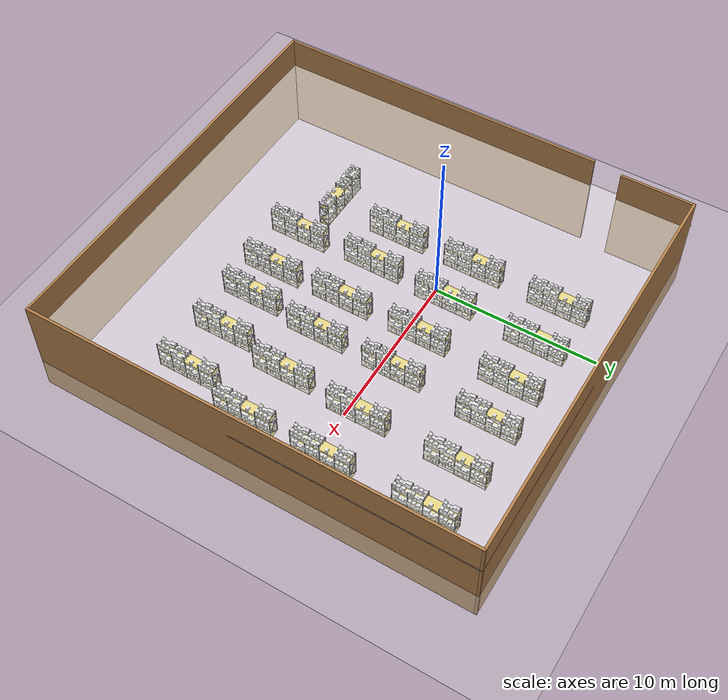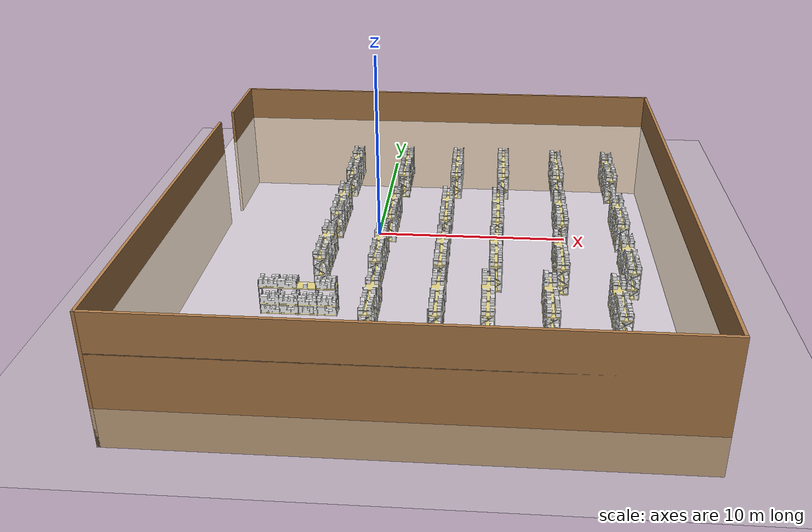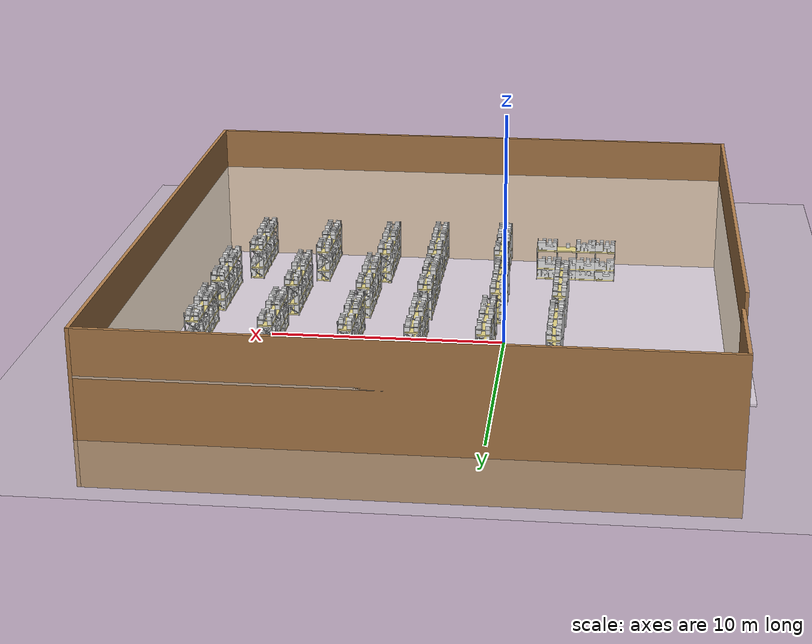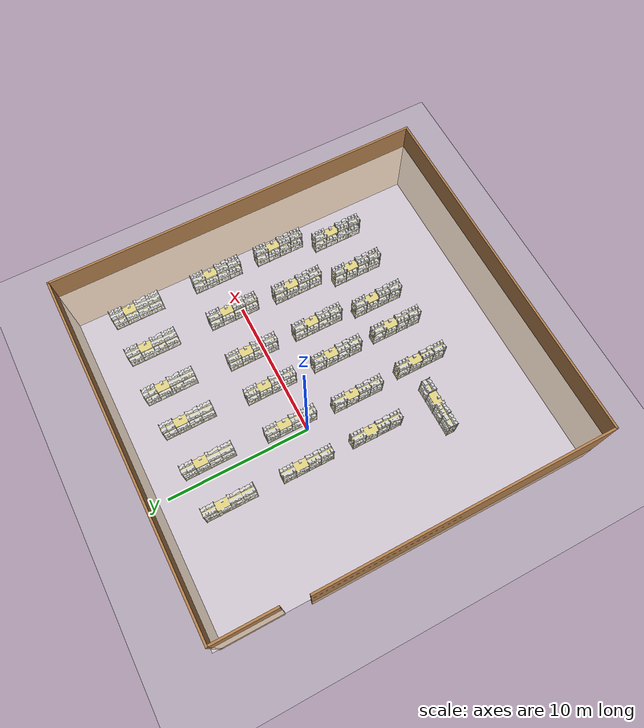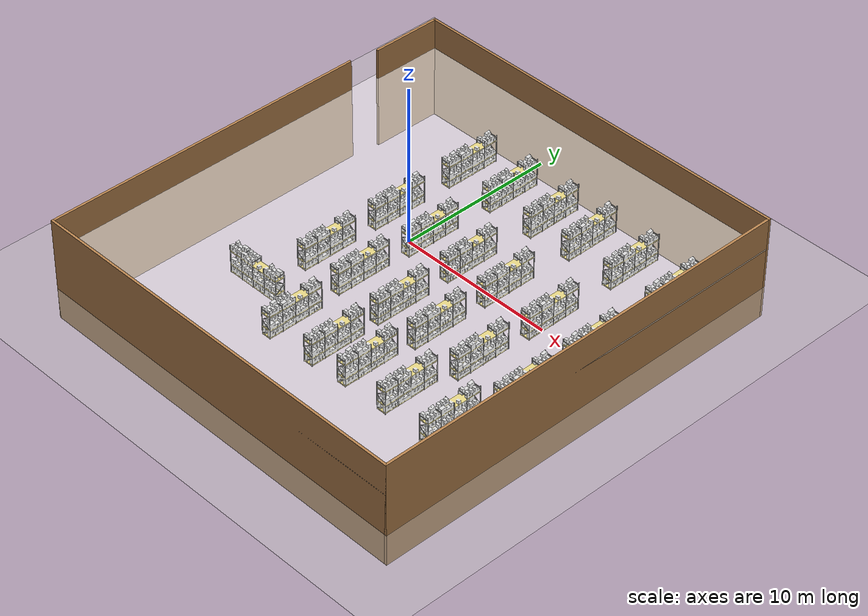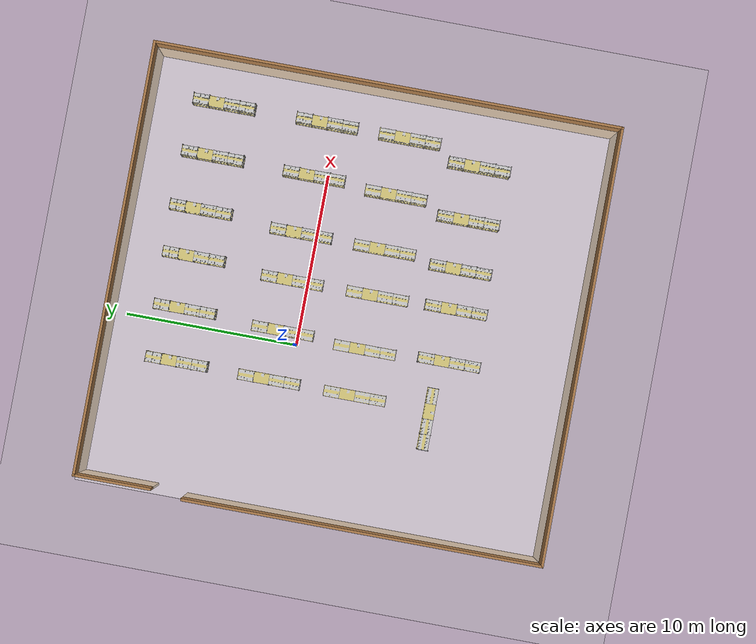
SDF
<?xml version='1.0' encoding='utf-8'?>
<sdf version="1.7">
  <world name="default">
    <light name="sun" type="directional">
      <cast_shadows>1</cast_shadows>
      <pose>0 0 10 0 -0 0</pose>
      <diffuse>0.8 0.8 0.8 1</diffuse>
      <specular>0.2 0.2 0.2 1</specular>
      <attenuation>
        <range>1000</range>
        <constant>0.9</constant>
        <linear>0.01</linear>
        <quadratic>0.001</quadratic>
      </attenuation>
      <direction>-0.5 0.1 -0.9</direction>
      <spot>
        <inner_angle>0</inner_angle>
        <outer_angle>0</outer_angle>
        <falloff>0</falloff>
      </spot>
    </light>
    <model name="ground_plane">
      <static>1</static>
      <link name="link">
        <collision name="collision">
          <geometry>
            <plane>
              <normal>0 0 1</normal>
              <size>100 100</size>
            </plane>
          </geometry>
          <surface>
            <contact>
              <collide_bitmask>65535</collide_bitmask>
              <ode />
            </contact>
            <friction>
              <ode>
                <mu>100</mu>
                <mu2>50</mu2>
              </ode>
              <torsional>
                <ode />
              </torsional>
            </friction>
            <bounce />
          </surface>
          <max_contacts>10</max_contacts>
        </collision>
        <visual name="visual">
          <cast_shadows>0</cast_shadows>
          <geometry>
            <plane>
              <normal>0 0 1</normal>
              <size>100 100</size>
            </plane>
          </geometry>
          <material>
            <script>
              <uri>file://media/materials/scripts/gazebo.material</uri>
              <name>Gazebo/Grey</name>
            </script>
          </material>
        </visual>
        <self_collide>0</self_collide>
        <enable_wind>0</enable_wind>
        <kinematic>0</kinematic>
      </link>
    </model>
    <gravity>0 0 -9.8</gravity>
    <magnetic_field>6e-06 2.3e-05 -4.2e-05</magnetic_field>
    <atmosphere type="adiabatic" />
    <physics type="ode">
      <max_step_size>0.001</max_step_size>
      <real_time_factor>1</real_time_factor>
      <real_time_update_rate>1000</real_time_update_rate>
    </physics>
    <scene>
      <ambient>0.4 0.4 0.4 1</ambient>
      <background>0.7 0.7 0.7 1</background>
      <shadows>1</shadows>
    </scene>
    <wind />
    <spherical_coordinates>
      <surface_model>EARTH_WGS84</surface_model>
      <latitude_deg>0</latitude_deg>
      <longitude_deg>0</longitude_deg>
      <elevation>0</elevation>
      <heading_deg>0</heading_deg>
    </spherical_coordinates>
    <gui fullscreen="0">
      <camera name="user_camera">
        <pose>-28 -31 34 0 0.68 0.75</pose>
        <view_controller>orbit</view_controller>
        <projection_type>perspective</projection_type>
      </camera>
    </gui>
    <model name="Untitled">
      <pose>15.4538 -2.50054 0 0 -0 0</pose>
      <link name="Floor_0">
        <collision name="Floor_0_Collision">
          <geometry>
            <box>
              <size>25.25 27 0.1</size>
            </box>
          </geometry>
          <pose>0 0 0.05 0 -0 0</pose>
          <max_contacts>10</max_contacts>
          <surface>
            <contact>
              <ode />
            </contact>
            <bounce />
            <friction>
              <torsional>
                <ode />
              </torsional>
              <ode />
            </friction>
          </surface>
        </collision>
        <visual name="Floor_0_Visual">
          <pose>0 0 0.05 0 -0 0</pose>
          <geometry>
            <box>
              <size>25.25 27 0.1</size>
            </box>
          </geometry>
          <material>
            <ambient>1 1 1 0.5</ambient>
            <diffuse>1 1 1 0.5</diffuse>
          </material>
          <meta>
            <layer>1</layer>
          </meta>
        </visual>
        <pose>-12.624999 0 2.5 0 -0 0</pose>
        <self_collide>0</self_collide>
        <enable_wind>0</enable_wind>
        <kinematic>0</kinematic>
      </link>
      <link name="Wall_0">
        <collision name="Wall_0_Collision">
          <geometry>
            <box>
              <size>20.75 0.15 6.5</size>
            </box>
          </geometry>
          <pose>0 0 1.25 0 -0 0</pose>
          <max_contacts>10</max_contacts>
          <surface>
            <contact>
              <ode />
            </contact>
            <bounce />
            <friction>
              <torsional>
                <ode />
              </torsional>
              <ode />
            </friction>
          </surface>
        </collision>
        <visual name="Wall_0_Visual">
          <pose>0 0 1.25 0 -0 0</pose>
          <geometry>
            <box>
              <size>20.75 0.15 6.5</size>
            </box>
          </geometry>
          <material>
            <script>
              <uri>file://media/materials/scripts/gazebo.material</uri>
              <name>Gazebo/Wood</name>
            </script>
            <ambient>1 1 1 1</ambient>
          </material>
          <meta>
            <layer>0</layer>
          </meta>
        </visual>
        <pose>-25.175 -3.125 0 0 -0 -1.5708</pose>
        <self_collide>0</self_collide>
        <enable_wind>0</enable_wind>
        <kinematic>0</kinematic>
      </link>
      <link name="Wall_1">
        <collision name="Wall_1_Collision">
          <geometry>
            <box>
              <size>25.25 0.15 6.5</size>
            </box>
          </geometry>
          <pose>0 0 1.25 0 -0 0</pose>
          <max_contacts>10</max_contacts>
          <surface>
            <contact>
              <ode />
            </contact>
            <bounce />
            <friction>
              <torsional>
                <ode />
              </torsional>
              <ode />
            </friction>
          </surface>
        </collision>
        <visual name="Wall_1_Visual">
          <pose>0 0 1.25 0 -0 0</pose>
          <geometry>
            <box>
              <size>25.25 0.15 6.5</size>
            </box>
          </geometry>
          <material>
            <script>
              <uri>file://media/materials/scripts/gazebo.material</uri>
              <name>Gazebo/Wood</name>
            </script>
            <ambient>1 1 1 1</ambient>
          </material>
          <meta>
            <layer>0</layer>
          </meta>
        </visual>
        <pose>-12.625 -13.425 0 0 -0 0</pose>
        <self_collide>0</self_collide>
        <enable_wind>0</enable_wind>
        <kinematic>0</kinematic>
      </link>
      <link name="Wall_2">
        <collision name="Wall_2_Collision">
          <geometry>
            <box>
              <size>27 0.15 6.5</size>
            </box>
          </geometry>
          <pose>0 0 1.25 0 -0 0</pose>
          <max_contacts>10</max_contacts>
          <surface>
            <contact>
              <ode />
            </contact>
            <bounce />
            <friction>
              <torsional>
                <ode />
              </torsional>
              <ode />
            </friction>
          </surface>
        </collision>
        <visual name="Wall_2_Visual">
          <pose>0 0 1.25 0 -0 0</pose>
          <geometry>
            <box>
              <size>27 0.15 6.5</size>
            </box>
          </geometry>
          <material>
            <script>
              <uri>file://media/materials/scripts/gazebo.material</uri>
              <name>Gazebo/Wood</name>
            </script>
            <ambient>1 1 1 1</ambient>
          </material>
          <meta>
            <layer>0</layer>
          </meta>
        </visual>
        <pose>-0.075 0 0 0 -0 1.5708</pose>
        <self_collide>0</self_collide>
        <enable_wind>0</enable_wind>
        <kinematic>0</kinematic>
      </link>
      <link name="Wall_3">
        <collision name="Wall_3_Collision">
          <geometry>
            <box>
              <size>25 0.15 6.5</size>
            </box>
          </geometry>
          <pose>0 0 1.25 0 -0 0</pose>
          <max_contacts>10</max_contacts>
          <surface>
            <contact>
              <ode />
            </contact>
            <bounce />
            <friction>
              <torsional>
                <ode />
              </torsional>
              <ode />
            </friction>
          </surface>
        </collision>
        <visual name="Wall_3_Visual">
          <pose>0 0 1.25 0 -0 0</pose>
          <geometry>
            <box>
              <size>25 0.15 6.5</size>
            </box>
          </geometry>
          <material>
            <script>
              <uri>file://media/materials/scripts/gazebo.material</uri>
              <name>Gazebo/Wood</name>
            </script>
            <ambient>1 1 1 1</ambient>
          </material>
          <meta>
            <layer>0</layer>
          </meta>
        </visual>
        <pose>-12.5 13.425 0 0 -0 3.14159</pose>
        <self_collide>0</self_collide>
        <enable_wind>0</enable_wind>
        <kinematic>0</kinematic>
      </link>
      <link name="Wall_4">
        <collision name="Wall_4_Collision">
          <geometry>
            <box>
              <size>4.5 0.15 6.5</size>
            </box>
          </geometry>
          <pose>0 0 1.25 0 -0 0</pose>
          <max_contacts>10</max_contacts>
          <surface>
            <contact>
              <ode />
            </contact>
            <bounce />
            <friction>
              <torsional>
                <ode />
              </torsional>
              <ode />
            </friction>
          </surface>
        </collision>
        <visual name="Wall_4_Visual">
          <pose>0 0 1.25 0 -0 0</pose>
          <geometry>
            <box>
              <size>4.5 0.15 6.5</size>
            </box>
          </geometry>
          <material>
            <script>
              <uri>file://media/materials/scripts/gazebo.material</uri>
              <name>Gazebo/Wood</name>
            </script>
            <ambient>1 1 1 1</ambient>
          </material>
          <meta>
            <layer>0</layer>
          </meta>
        </visual>
        <pose>-24.925 11.25 0 0 -0 -1.5708</pose>
        <self_collide>0</self_collide>
        <enable_wind>0</enable_wind>
        <kinematic>0</kinematic>
      </link>
      <static>1</static>
    </model>
    <model name="shelf_aruco">
      <pose>-2.29273 -8.21492 0 0 -0 0</pose>
      <self_collide>0</self_collide>
      <link name="shelf_base">
        <pose>-0.5 0 0 0 -0 0</pose>
        <collision name="shelf_chassi_collision">
          <pose>0 0 0.9 0 -0 0</pose>
          <geometry>
            <box>
              <size>3.6 0.6 1.8</size>
            </box>
          </geometry>
          <max_contacts>10</max_contacts>
          <surface>
            <contact>
              <ode />
            </contact>
            <bounce />
            <friction>
              <torsional>
                <ode />
              </torsional>
              <ode />
            </friction>
          </surface>
        </collision>
        <visual name="shelf_chassi_visual">
          <pose>0 0 0 0 -0 0</pose>
          <geometry>
            <mesh>
              <scale>0.2 0.3 0.3</scale>
              <uri>../astra_gazebo_models/Shelf_with_ARUco_boxes/meshes/shelf_big_movai.dae</uri>
            </mesh>
          </geometry>
        </visual>
        <self_collide>0</self_collide>
        <enable_wind>0</enable_wind>
        <kinematic>0</kinematic>
      </link>
      <static>1</static>
    </model>
    <model name="shelf_aruco_clone">
      <pose>-2.25997 -3.32839 0 0 -0 1.57253</pose>
      <self_collide>0</self_collide>
      <link name="shelf_base">
        <pose>-0.5 0 0 0 -0 0</pose>
        <collision name="shelf_chassi_collision">
          <pose>0 0 0.9 0 -0 0</pose>
          <geometry>
            <box>
              <size>3.6 0.6 1.8</size>
            </box>
          </geometry>
          <max_contacts>10</max_contacts>
          <surface>
            <contact>
              <ode />
            </contact>
            <bounce />
            <friction>
              <torsional>
                <ode />
              </torsional>
              <ode />
            </friction>
          </surface>
        </collision>
        <visual name="shelf_chassi_visual">
          <pose>0 0 0 0 -0 0</pose>
          <geometry>
            <mesh>
              <scale>0.2 0.3 0.3</scale>
              <uri>../astra_gazebo_models/Shelf_with_ARUco_boxes/meshes/shelf_big_movai.dae</uri>
            </mesh>
          </geometry>
        </visual>
        <self_collide>0</self_collide>
        <enable_wind>0</enable_wind>
        <kinematic>0</kinematic>
      </link>
      <static>1</static>
    </model>
    <model name="shelf_aruco_clone_clone">
      <pose>-2.22463 1.67727 0 0 -0 1.57253</pose>
      <self_collide>0</self_collide>
      <link name="shelf_base">
        <pose>-0.5 0 0 0 -0 0</pose>
        <collision name="shelf_chassi_collision">
          <pose>0 0 0.9 0 -0 0</pose>
          <geometry>
            <box>
              <size>3.6 0.6 1.8</size>
            </box>
          </geometry>
          <max_contacts>10</max_contacts>
          <surface>
            <contact>
              <ode />
            </contact>
            <bounce />
            <friction>
              <torsional>
                <ode />
              </torsional>
              <ode />
            </friction>
          </surface>
        </collision>
        <visual name="shelf_chassi_visual">
          <pose>0 0 0 0 -0 0</pose>
          <geometry>
            <mesh>
              <scale>0.2 0.3 0.3</scale>
              <uri>../astra_gazebo_models/Shelf_with_ARUco_boxes/meshes/shelf_big_movai.dae</uri>
            </mesh>
          </geometry>
        </visual>
        <self_collide>0</self_collide>
        <enable_wind>0</enable_wind>
        <kinematic>0</kinematic>
      </link>
      <static>1</static>
    </model>
    <model name="shelf_aruco_clone_clone_0">
      <pose>-2.17709 7.0905 0 0 -0 1.57253</pose>
      <self_collide>0</self_collide>
      <link name="shelf_base">
        <pose>-0.5 0 0 0 -0 0</pose>
        <collision name="shelf_chassi_collision">
          <pose>0 0 0.9 0 -0 0</pose>
          <geometry>
            <box>
              <size>3.6 0.6 1.8</size>
            </box>
          </geometry>
          <max_contacts>10</max_contacts>
          <surface>
            <contact>
              <ode />
            </contact>
            <bounce />
            <friction>
              <torsional>
                <ode />
              </torsional>
              <ode />
            </friction>
          </surface>
        </collision>
        <visual name="shelf_chassi_visual">
          <pose>0 0 0 0 -0 0</pose>
          <geometry>
            <mesh>
              <scale>0.2 0.3 0.3</scale>
              <uri>../astra_gazebo_models/Shelf_with_ARUco_boxes/meshes/shelf_big_movai.dae</uri>
            </mesh>
          </geometry>
        </visual>
        <self_collide>0</self_collide>
        <enable_wind>0</enable_wind>
        <kinematic>0</kinematic>
      </link>
      <static>1</static>
    </model>
    <model name="shelf_aruco_clone_1">
      <pose>0.89089 7.1816 0 0 -0 1.57253</pose>
      <self_collide>0</self_collide>
      <link name="shelf_base">
        <pose>-0.5 0 0 0 -0 0</pose>
        <collision name="shelf_chassi_collision">
          <pose>0 0 0.9 0 -0 0</pose>
          <geometry>
            <box>
              <size>3.6 0.6 1.8</size>
            </box>
          </geometry>
          <max_contacts>10</max_contacts>
          <surface>
            <contact>
              <ode />
            </contact>
            <bounce />
            <friction>
              <torsional>
                <ode />
              </torsional>
              <ode />
            </friction>
          </surface>
        </collision>
        <visual name="shelf_chassi_visual">
          <pose>0 0 0 0 -0 0</pose>
          <geometry>
            <mesh>
              <scale>0.2 0.3 0.3</scale>
              <uri>../astra_gazebo_models/Shelf_with_ARUco_boxes/meshes/shelf_big_movai.dae</uri>
            </mesh>
          </geometry>
        </visual>
        <self_collide>0</self_collide>
        <enable_wind>0</enable_wind>
        <kinematic>0</kinematic>
      </link>
      <static>1</static>
    </model>
    <model name="shelf_aruco_clone_1_clone">
      <pose>3.95435 7.2214 0 0 -0 1.57253</pose>
      <self_collide>0</self_collide>
      <link name="shelf_base">
        <pose>-0.5 0 0 0 -0 0</pose>
        <collision name="shelf_chassi_collision">
          <pose>0 0 0.9 0 -0 0</pose>
          <geometry>
            <box>
              <size>3.6 0.6 1.8</size>
            </box>
          </geometry>
          <max_contacts>10</max_contacts>
          <surface>
            <contact>
              <ode />
            </contact>
            <bounce />
            <friction>
              <torsional>
                <ode />
              </torsional>
              <ode />
            </friction>
          </surface>
        </collision>
        <visual name="shelf_chassi_visual">
          <pose>0 0 0 0 -0 0</pose>
          <geometry>
            <mesh>
              <scale>0.2 0.3 0.3</scale>
              <uri>../astra_gazebo_models/Shelf_with_ARUco_boxes/meshes/shelf_big_movai.dae</uri>
            </mesh>
          </geometry>
        </visual>
        <self_collide>0</self_collide>
        <enable_wind>0</enable_wind>
        <kinematic>0</kinematic>
      </link>
      <static>1</static>
    </model>
    <model name="shelf_aruco_clone_1_clone_0">
      <pose>6.69861 7.32468 0 0 -0 1.57253</pose>
      <self_collide>0</self_collide>
      <link name="shelf_base">
        <pose>-0.5 0 0 0 -0 0</pose>
        <collision name="shelf_chassi_collision">
          <pose>0 0 0.9 0 -0 0</pose>
          <geometry>
            <box>
              <size>3.6 0.6 1.8</size>
            </box>
          </geometry>
          <max_contacts>10</max_contacts>
          <surface>
            <contact>
              <ode />
            </contact>
            <bounce />
            <friction>
              <torsional>
                <ode />
              </torsional>
              <ode />
            </friction>
          </surface>
        </collision>
        <visual name="shelf_chassi_visual">
          <pose>0 0 0 0 -0 0</pose>
          <geometry>
            <mesh>
              <scale>0.2 0.3 0.3</scale>
              <uri>../astra_gazebo_models/Shelf_with_ARUco_boxes/meshes/shelf_big_movai.dae</uri>
            </mesh>
          </geometry>
        </visual>
        <self_collide>0</self_collide>
        <enable_wind>0</enable_wind>
        <kinematic>0</kinematic>
      </link>
      <static>1</static>
    </model>
    <model name="shelf_aruco_clone_1_clone_1">
      <pose>9.85525 7.2158 0 0 -0 1.57253</pose>
      <self_collide>0</self_collide>
      <link name="shelf_base">
        <pose>-0.5 0 0 0 -0 0</pose>
        <collision name="shelf_chassi_collision">
          <pose>0 0 0.9 0 -0 0</pose>
          <geometry>
            <box>
              <size>3.6 0.6 1.8</size>
            </box>
          </geometry>
          <max_contacts>10</max_contacts>
          <surface>
            <contact>
              <ode />
            </contact>
            <bounce />
            <friction>
              <torsional>
                <ode />
              </torsional>
              <ode />
            </friction>
          </surface>
        </collision>
        <visual name="shelf_chassi_visual">
          <pose>0 0 0 0 -0 0</pose>
          <geometry>
            <mesh>
              <scale>0.2 0.3 0.3</scale>
              <uri>../astra_gazebo_models/Shelf_with_ARUco_boxes/meshes/shelf_big_movai.dae</uri>
            </mesh>
          </geometry>
        </visual>
        <self_collide>0</self_collide>
        <enable_wind>0</enable_wind>
        <kinematic>0</kinematic>
      </link>
      <static>1</static>
    </model>
    <model name="shelf_aruco_clone_1_clone_2">
      <pose>12.9196 7.11119 0 0 -0 1.57253</pose>
      <self_collide>0</self_collide>
      <link name="shelf_base">
        <pose>-0.5 0 0 0 -0 0</pose>
        <collision name="shelf_chassi_collision">
          <pose>0 0 0.9 0 -0 0</pose>
          <geometry>
            <box>
              <size>3.6 0.6 1.8</size>
            </box>
          </geometry>
          <max_contacts>10</max_contacts>
          <surface>
            <contact>
              <ode />
            </contact>
            <bounce />
            <friction>
              <torsional>
                <ode />
              </torsional>
              <ode />
            </friction>
          </surface>
        </collision>
        <visual name="shelf_chassi_visual">
          <pose>0 0 0 0 -0 0</pose>
          <geometry>
            <mesh>
              <scale>0.2 0.3 0.3</scale>
              <uri>../astra_gazebo_models/Shelf_with_ARUco_boxes/meshes/shelf_big_movai.dae</uri>
            </mesh>
          </geometry>
        </visual>
        <self_collide>0</self_collide>
        <enable_wind>0</enable_wind>
        <kinematic>0</kinematic>
      </link>
      <static>1</static>
    </model>
    <model name="shelf_aruco_clone_clone_0_clone">
      <pose>0.673983 1.40619 0 0 -0 1.57253</pose>
      <self_collide>0</self_collide>
      <link name="shelf_base">
        <pose>-0.5 0 0 0 -0 0</pose>
        <collision name="shelf_chassi_collision">
          <pose>0 0 0.9 0 -0 0</pose>
          <geometry>
            <box>
              <size>3.6 0.6 1.8</size>
            </box>
          </geometry>
          <max_contacts>10</max_contacts>
          <surface>
            <contact>
              <ode />
            </contact>
            <bounce />
            <friction>
              <torsional>
                <ode />
              </torsional>
              <ode />
            </friction>
          </surface>
        </collision>
        <visual name="shelf_chassi_visual">
          <pose>0 0 0 0 -0 0</pose>
          <geometry>
            <mesh>
              <scale>0.2 0.3 0.3</scale>
              <uri>../astra_gazebo_models/Shelf_with_ARUco_boxes/meshes/shelf_big_movai.dae</uri>
            </mesh>
          </geometry>
        </visual>
        <self_collide>0</self_collide>
        <enable_wind>0</enable_wind>
        <kinematic>0</kinematic>
      </link>
      <static>1</static>
    </model>
    <model name="shelf_aruco_clone_clone_0_clone_0">
      <pose>3.6285 1.40244 0 0 -0 1.57253</pose>
      <self_collide>0</self_collide>
      <link name="shelf_base">
        <pose>-0.5 0 0 0 -0 0</pose>
        <collision name="shelf_chassi_collision">
          <pose>0 0 0.9 0 -0 0</pose>
          <geometry>
            <box>
              <size>3.6 0.6 1.8</size>
            </box>
          </geometry>
          <max_contacts>10</max_contacts>
          <surface>
            <contact>
              <ode />
            </contact>
            <bounce />
            <friction>
              <torsional>
                <ode />
              </torsional>
              <ode />
            </friction>
          </surface>
        </collision>
        <visual name="shelf_chassi_visual">
          <pose>0 0 0 0 -0 0</pose>
          <geometry>
            <mesh>
              <scale>0.2 0.3 0.3</scale>
              <uri>../astra_gazebo_models/Shelf_with_ARUco_boxes/meshes/shelf_big_movai.dae</uri>
            </mesh>
          </geometry>
        </visual>
        <self_collide>0</self_collide>
        <enable_wind>0</enable_wind>
        <kinematic>0</kinematic>
      </link>
      <static>1</static>
    </model>
    <model name="shelf_aruco_clone_clone_0_clone_1">
      <pose>6.39926 1.39094 0 0 -0 1.57253</pose>
      <self_collide>0</self_collide>
      <link name="shelf_base">
        <pose>-0.5 0 0 0 -0 0</pose>
        <collision name="shelf_chassi_collision">
          <pose>0 0 0.9 0 -0 0</pose>
          <geometry>
            <box>
              <size>3.6 0.6 1.8</size>
            </box>
          </geometry>
          <max_contacts>10</max_contacts>
          <surface>
            <contact>
              <ode />
            </contact>
            <bounce />
            <friction>
              <torsional>
                <ode />
              </torsional>
              <ode />
            </friction>
          </surface>
        </collision>
        <visual name="shelf_chassi_visual">
          <pose>0 0 0 0 -0 0</pose>
          <geometry>
            <mesh>
              <scale>0.2 0.3 0.3</scale>
              <uri>../astra_gazebo_models/Shelf_with_ARUco_boxes/meshes/shelf_big_movai.dae</uri>
            </mesh>
          </geometry>
        </visual>
        <self_collide>0</self_collide>
        <enable_wind>0</enable_wind>
        <kinematic>0</kinematic>
      </link>
      <static>1</static>
    </model>
    <model name="shelf_aruco_clone_clone_0_clone_2">
      <pose>9.77125 1.25914 0 0 -0 1.57253</pose>
      <self_collide>0</self_collide>
      <link name="shelf_base">
        <pose>-0.5 0 0 0 -0 0</pose>
        <collision name="shelf_chassi_collision">
          <pose>0 0 0.9 0 -0 0</pose>
          <geometry>
            <box>
              <size>3.6 0.6 1.8</size>
            </box>
          </geometry>
          <max_contacts>10</max_contacts>
          <surface>
            <contact>
              <ode />
            </contact>
            <bounce />
            <friction>
              <torsional>
                <ode />
              </torsional>
              <ode />
            </friction>
          </surface>
        </collision>
        <visual name="shelf_chassi_visual">
          <pose>0 0 0 0 -0 0</pose>
          <geometry>
            <mesh>
              <scale>0.2 0.3 0.3</scale>
              <uri>../astra_gazebo_models/Shelf_with_ARUco_boxes/meshes/shelf_big_movai.dae</uri>
            </mesh>
          </geometry>
        </visual>
        <self_collide>0</self_collide>
        <enable_wind>0</enable_wind>
        <kinematic>0</kinematic>
      </link>
      <static>1</static>
    </model>
    <model name="shelf_aruco_clone_clone_0_clone_3">
      <pose>12.9116 1.07342 0 0 -0 1.57253</pose>
      <self_collide>0</self_collide>
      <link name="shelf_base">
        <pose>-0.5 0 0 0 -0 0</pose>
        <collision name="shelf_chassi_collision">
          <pose>0 0 0.9 0 -0 0</pose>
          <geometry>
            <box>
              <size>3.6 0.6 1.8</size>
            </box>
          </geometry>
          <max_contacts>10</max_contacts>
          <surface>
            <contact>
              <ode />
            </contact>
            <bounce />
            <friction>
              <torsional>
                <ode />
              </torsional>
              <ode />
            </friction>
          </surface>
        </collision>
        <visual name="shelf_chassi_visual">
          <pose>0 0 0 0 -0 0</pose>
          <geometry>
            <mesh>
              <scale>0.2 0.3 0.3</scale>
              <uri>../astra_gazebo_models/Shelf_with_ARUco_boxes/meshes/shelf_big_movai.dae</uri>
            </mesh>
          </geometry>
        </visual>
        <self_collide>0</self_collide>
        <enable_wind>0</enable_wind>
        <kinematic>0</kinematic>
      </link>
      <static>1</static>
    </model>
    <model name="shelf_aruco_clone_clone_0_clone_0_clone">
      <pose>0.45254 -3.41912 0 0 -0 1.57253</pose>
      <self_collide>0</self_collide>
      <link name="shelf_base">
        <pose>-0.5 0 0 0 -0 0</pose>
        <collision name="shelf_chassi_collision">
          <pose>0 0 0.9 0 -0 0</pose>
          <geometry>
            <box>
              <size>3.6 0.6 1.8</size>
            </box>
          </geometry>
          <max_contacts>10</max_contacts>
          <surface>
            <contact>
              <ode />
            </contact>
            <bounce />
            <friction>
              <torsional>
                <ode />
              </torsional>
              <ode />
            </friction>
          </surface>
        </collision>
        <visual name="shelf_chassi_visual">
          <pose>0 0 0 0 -0 0</pose>
          <geometry>
            <mesh>
              <scale>0.2 0.3 0.3</scale>
              <uri>../astra_gazebo_models/Shelf_with_ARUco_boxes/meshes/shelf_big_movai.dae</uri>
            </mesh>
          </geometry>
        </visual>
        <self_collide>0</self_collide>
        <enable_wind>0</enable_wind>
        <kinematic>0</kinematic>
      </link>
      <static>1</static>
    </model>
    <model name="shelf_aruco_clone_clone_0_clone_0_clone_0">
      <pose>3.63303 -3.57261 0 0 -0 1.57253</pose>
      <self_collide>0</self_collide>
      <link name="shelf_base">
        <pose>-0.5 0 0 0 -0 0</pose>
        <collision name="shelf_chassi_collision">
          <pose>0 0 0.9 0 -0 0</pose>
          <geometry>
            <box>
              <size>3.6 0.6 1.8</size>
            </box>
          </geometry>
          <max_contacts>10</max_contacts>
          <surface>
            <contact>
              <ode />
            </contact>
            <bounce />
            <friction>
              <torsional>
                <ode />
              </torsional>
              <ode />
            </friction>
          </surface>
        </collision>
        <visual name="shelf_chassi_visual">
          <pose>0 0 0 0 -0 0</pose>
          <geometry>
            <mesh>
              <scale>0.2 0.3 0.3</scale>
              <uri>../astra_gazebo_models/Shelf_with_ARUco_boxes/meshes/shelf_big_movai.dae</uri>
            </mesh>
          </geometry>
        </visual>
        <self_collide>0</self_collide>
        <enable_wind>0</enable_wind>
        <kinematic>0</kinematic>
      </link>
      <static>1</static>
    </model>
    <model name="shelf_aruco_clone_clone_0_clone_0_clone_1">
      <pose>6.33161 -3.50178 0 0 -0 1.57253</pose>
      <self_collide>0</self_collide>
      <link name="shelf_base">
        <pose>-0.5 0 0 0 -0 0</pose>
        <collision name="shelf_chassi_collision">
          <pose>0 0 0.9 0 -0 0</pose>
          <geometry>
            <box>
              <size>3.6 0.6 1.8</size>
            </box>
          </geometry>
          <max_contacts>10</max_contacts>
          <surface>
            <contact>
              <ode />
            </contact>
            <bounce />
            <friction>
              <torsional>
                <ode />
              </torsional>
              <ode />
            </friction>
          </surface>
        </collision>
        <visual name="shelf_chassi_visual">
          <pose>0 0 0 0 -0 0</pose>
          <geometry>
            <mesh>
              <scale>0.2 0.3 0.3</scale>
              <uri>../astra_gazebo_models/Shelf_with_ARUco_boxes/meshes/shelf_big_movai.dae</uri>
            </mesh>
          </geometry>
        </visual>
        <self_collide>0</self_collide>
        <enable_wind>0</enable_wind>
        <kinematic>0</kinematic>
      </link>
      <static>1</static>
    </model>
    <model name="shelf_aruco_clone_clone_0_clone_0_clone_2">
      <pose>9.53572 -3.57094 0 0 -0 1.57253</pose>
      <self_collide>0</self_collide>
      <link name="shelf_base">
        <pose>-0.5 0 0 0 -0 0</pose>
        <collision name="shelf_chassi_collision">
          <pose>0 0 0.9 0 -0 0</pose>
          <geometry>
            <box>
              <size>3.6 0.6 1.8</size>
            </box>
          </geometry>
          <max_contacts>10</max_contacts>
          <surface>
            <contact>
              <ode />
            </contact>
            <bounce />
            <friction>
              <torsional>
                <ode />
              </torsional>
              <ode />
            </friction>
          </surface>
        </collision>
        <visual name="shelf_chassi_visual">
          <pose>0 0 0 0 -0 0</pose>
          <geometry>
            <mesh>
              <scale>0.2 0.3 0.3</scale>
              <uri>../astra_gazebo_models/Shelf_with_ARUco_boxes/meshes/shelf_big_movai.dae</uri>
            </mesh>
          </geometry>
        </visual>
        <self_collide>0</self_collide>
        <enable_wind>0</enable_wind>
        <kinematic>0</kinematic>
      </link>
      <static>1</static>
    </model>
    <model name="shelf_aruco_clone_clone_0_clone_0_clone_3">
      <pose>12.8849 -3.77109 0 0 -0 1.57253</pose>
      <self_collide>0</self_collide>
      <link name="shelf_base">
        <pose>-0.5 0 0 0 -0 0</pose>
        <collision name="shelf_chassi_collision">
          <pose>0 0 0.9 0 -0 0</pose>
          <geometry>
            <box>
              <size>3.6 0.6 1.8</size>
            </box>
          </geometry>
          <max_contacts>10</max_contacts>
          <surface>
            <contact>
              <ode />
            </contact>
            <bounce />
            <friction>
              <torsional>
                <ode />
              </torsional>
              <ode />
            </friction>
          </surface>
        </collision>
        <visual name="shelf_chassi_visual">
          <pose>0 0 0 0 -0 0</pose>
          <geometry>
            <mesh>
              <scale>0.2 0.3 0.3</scale>
              <uri>../astra_gazebo_models/Shelf_with_ARUco_boxes/meshes/shelf_big_movai.dae</uri>
            </mesh>
          </geometry>
        </visual>
        <self_collide>0</self_collide>
        <enable_wind>0</enable_wind>
        <kinematic>0</kinematic>
      </link>
      <static>1</static>
    </model>
    <model name="shelf_aruco_clone_clone_0_clone_0_clone_11">
      <pose>0.631172 -8.32033 0 0 -0 1.57253</pose>
      <self_collide>0</self_collide>
      <link name="shelf_base">
        <pose>-0.5 0 0 0 -0 0</pose>
        <collision name="shelf_chassi_collision">
          <pose>0 0 0.9 0 -0 0</pose>
          <geometry>
            <box>
              <size>3.6 0.6 1.8</size>
            </box>
          </geometry>
          <max_contacts>10</max_contacts>
          <surface>
            <contact>
              <ode />
            </contact>
            <bounce />
            <friction>
              <torsional>
                <ode />
              </torsional>
              <ode />
            </friction>
          </surface>
        </collision>
        <visual name="shelf_chassi_visual">
          <pose>0 0 0 0 -0 0</pose>
          <geometry>
            <mesh>
              <scale>0.2 0.3 0.3</scale>
              <uri>../astra_gazebo_models/Shelf_with_ARUco_boxes/meshes/shelf_big_movai.dae</uri>
            </mesh>
          </geometry>
        </visual>
        <self_collide>0</self_collide>
        <enable_wind>0</enable_wind>
        <kinematic>0</kinematic>
      </link>
      <static>1</static>
    </model>
    <model name="shelf_aruco_clone_clone_0_clone_0_clone_12">
      <pose>3.68139 -8.16851 0 0 -0 1.57253</pose>
      <self_collide>0</self_collide>
      <link name="shelf_base">
        <pose>-0.5 0 0 0 -0 0</pose>
        <collision name="shelf_chassi_collision">
          <pose>0 0 0.9 0 -0 0</pose>
          <geometry>
            <box>
              <size>3.6 0.6 1.8</size>
            </box>
          </geometry>
          <max_contacts>10</max_contacts>
          <surface>
            <contact>
              <ode />
            </contact>
            <bounce />
            <friction>
              <torsional>
                <ode />
              </torsional>
              <ode />
            </friction>
          </surface>
        </collision>
        <visual name="shelf_chassi_visual">
          <pose>0 0 0 0 -0 0</pose>
          <geometry>
            <mesh>
              <scale>0.2 0.3 0.3</scale>
              <uri>../astra_gazebo_models/Shelf_with_ARUco_boxes/meshes/shelf_big_movai.dae</uri>
            </mesh>
          </geometry>
        </visual>
        <self_collide>0</self_collide>
        <enable_wind>0</enable_wind>
        <kinematic>0</kinematic>
      </link>
      <static>1</static>
    </model>
    <model name="shelf_aruco_clone_clone_0_clone_0_clone_13">
      <pose>6 -8 0 0 -0 1.57253</pose>
      <self_collide>0</self_collide>
      <link name="shelf_base">
        <pose>-0.5 0 0 0 -0 0</pose>
        <collision name="shelf_chassi_collision">
          <pose>0 0 0.9 0 -0 0</pose>
          <geometry>
            <box>
              <size>3.6 0.6 1.8</size>
            </box>
          </geometry>
          <max_contacts>10</max_contacts>
          <surface>
            <contact>
              <ode />
            </contact>
            <bounce />
            <friction>
              <torsional>
                <ode />
              </torsional>
              <ode />
            </friction>
          </surface>
        </collision>
        <visual name="shelf_chassi_visual">
          <pose>0 0 0 0 -0 0</pose>
          <geometry>
            <mesh>
              <scale>0.2 0.3 0.3</scale>
              <uri>../astra_gazebo_models/Shelf_with_ARUco_boxes/meshes/shelf_big_movai.dae</uri>
            </mesh>
          </geometry>
        </visual>
        <self_collide>0</self_collide>
        <enable_wind>0</enable_wind>
        <kinematic>0</kinematic>
      </link>
      <static>1</static>
    </model>
    <model name="shelf_aruco_clone_clone_0_clone_0_clone_14">
      <pose>8.86289 -7.93395 0 0 -0 1.57253</pose>
      <self_collide>0</self_collide>
      <link name="shelf_base">
        <pose>-0.5 0 0 0 -0 0</pose>
        <collision name="shelf_chassi_collision">
          <pose>0 0 0.9 0 -0 0</pose>
          <geometry>
            <box>
              <size>3.6 0.6 1.8</size>
            </box>
          </geometry>
          <max_contacts>10</max_contacts>
          <surface>
            <contact>
              <ode />
            </contact>
            <bounce />
            <friction>
              <torsional>
                <ode />
              </torsional>
              <ode />
            </friction>
          </surface>
        </collision>
        <visual name="shelf_chassi_visual">
          <pose>0 0 0 0 -0 0</pose>
          <geometry>
            <mesh>
              <scale>0.2 0.3 0.3</scale>
              <uri>../astra_gazebo_models/Shelf_with_ARUco_boxes/meshes/shelf_big_movai.dae</uri>
            </mesh>
          </geometry>
        </visual>
        <self_collide>0</self_collide>
        <enable_wind>0</enable_wind>
        <kinematic>0</kinematic>
      </link>
      <static>1</static>
    </model>
    <model name="shelf_aruco_clone_clone_0_clone_0_clone_15">
      <pose>12 -8 0 0 -0 1.57253</pose>
      <self_collide>0</self_collide>
      <link name="shelf_base">
        <pose>-0.5 0 0 0 -0 0</pose>
        <collision name="shelf_chassi_collision">
          <pose>0 0 0.9 0 -0 0</pose>
          <geometry>
            <box>
              <size>3.6 0.6 1.8</size>
            </box>
          </geometry>
          <max_contacts>10</max_contacts>
          <surface>
            <contact>
              <ode />
            </contact>
            <bounce />
            <friction>
              <torsional>
                <ode />
              </torsional>
              <ode />
            </friction>
          </surface>
        </collision>
        <visual name="shelf_chassi_visual">
          <pose>0 0 0 0 -0 0</pose>
          <geometry>
            <mesh>
              <scale>0.2 0.3 0.3</scale>
              <uri>../astra_gazebo_models/Shelf_with_ARUco_boxes/meshes/shelf_big_movai.dae</uri>
            </mesh>
          </geometry>
        </visual>
        <self_collide>0</self_collide>
        <enable_wind>0</enable_wind>
        <kinematic>0</kinematic>
      </link>
      <static>1</static>
    </model>
    </world>
</sdf>
